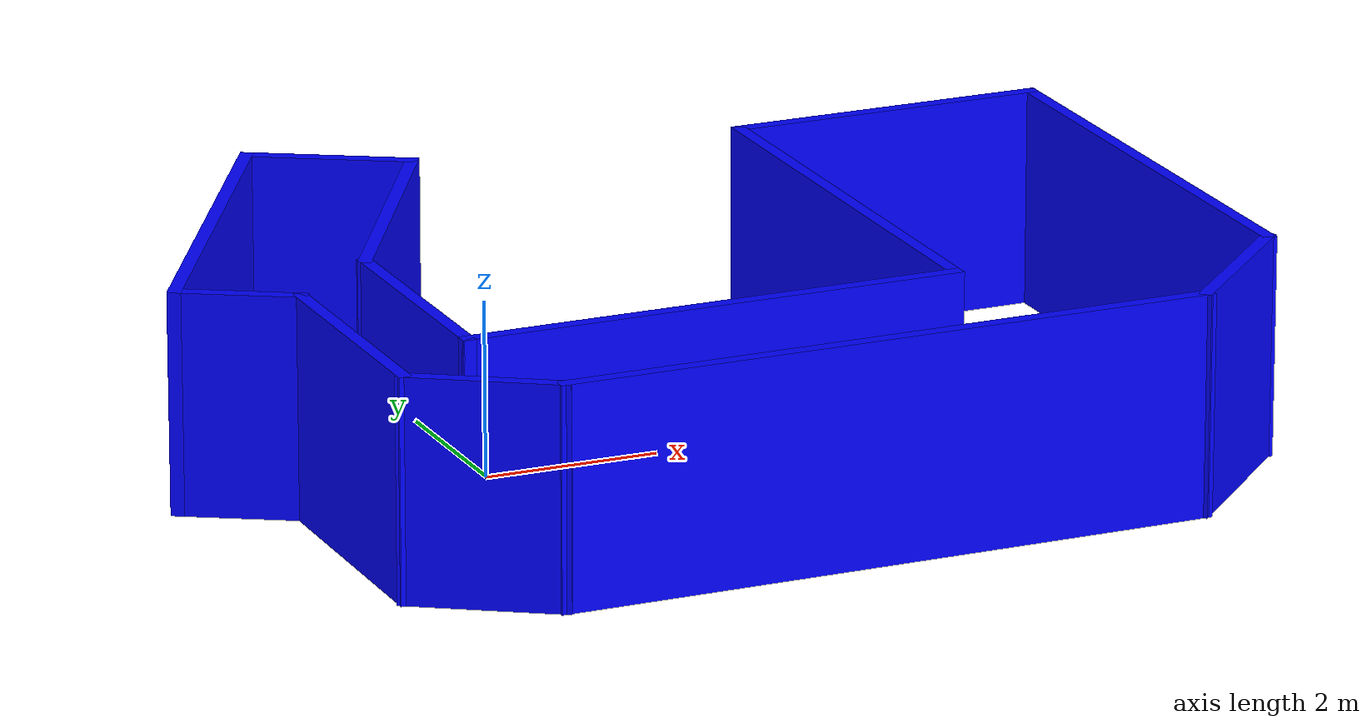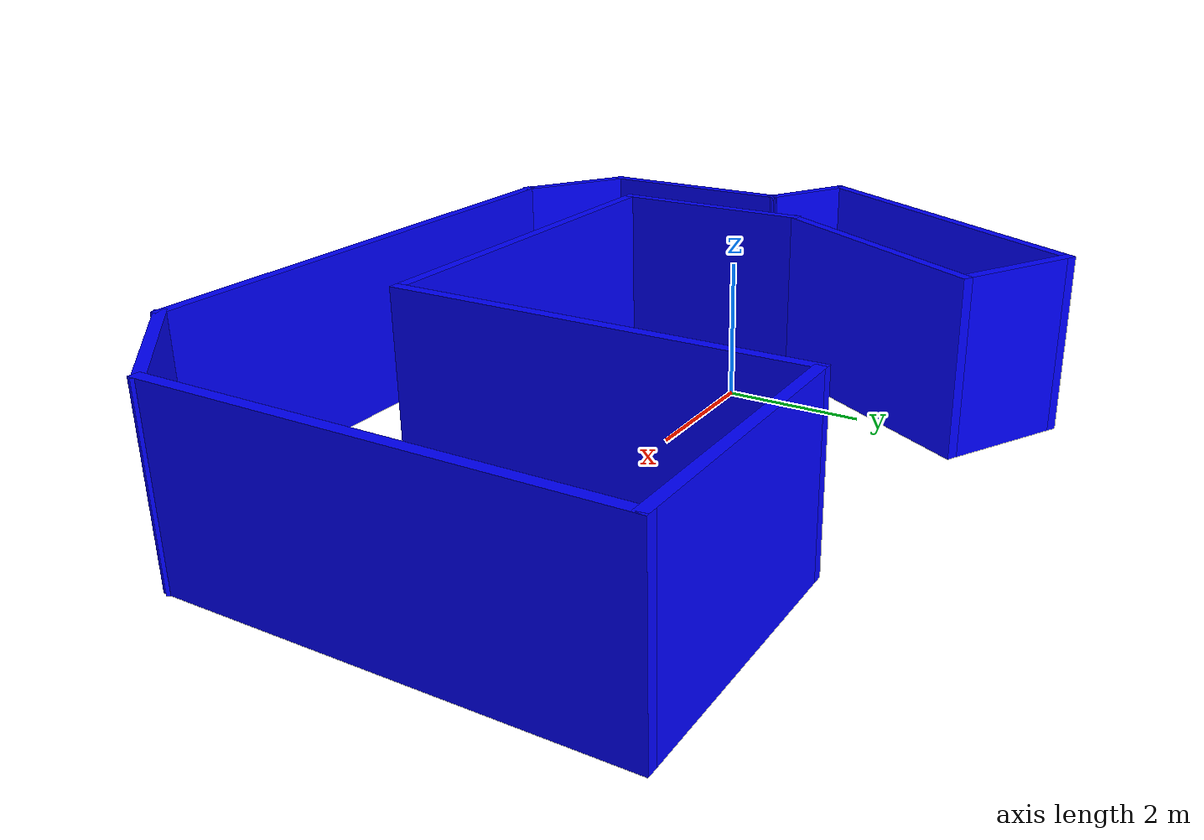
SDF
<?xml version='1.0'?>
<sdf version='1.6'>
  <model name='initial_design'>
    <pose frame=''>2.27625 0.119608 0 0 -0 0</pose>
    <link name='Wall_0'>
      <collision name='Wall_0_Collision'>
        <geometry>
          <box>
            <size>3 0.15 2.5</size>
          </box>
        </geometry>
        <pose frame=''>0 0 1.25 0 -0 0</pose>
      </collision>
      <visual name='Wall_0_Visual'>
        <pose frame=''>0 0 1.25 0 -0 0</pose>
        <geometry>
          <box>
            <size>3 0.15 2.5</size>
          </box>
        </geometry>
        <material>
          <script>
            <uri>file://media/materials/scripts/gazebo.material</uri>
            <name>Gazebo/Grey</name>
          </script>
          <ambient>0 0 1 1</ambient>
        </material>
        <meta>
          <layer>0</layer>
        </meta>
      </visual>
      <pose frame=''>-4.54625 -1.98461 0 0 -0 1.5708</pose>
    </link>
    <link name='Wall_1'>
      <collision name='Wall_1_Collision'>
        <geometry>
          <box>
            <size>1.5 0.15 2.5</size>
          </box>
        </geometry>
        <pose frame=''>0 0 1.25 0 -0 0</pose>
      </collision>
      <visual name='Wall_1_Visual'>
        <pose frame=''>0 0 1.25 0 -0 0</pose>
        <geometry>
          <box>
            <size>1.5 0.15 2.5</size>
          </box>
        </geometry>
        <material>
          <script>
            <uri>file://media/materials/scripts/gazebo.material</uri>
            <name>Gazebo/Grey</name>
          </script>
          <ambient>0 0 1 1</ambient>
        </material>
        <meta>
          <layer>0</layer>
        </meta>
      </visual>
      <pose frame=''>-5.13081 -0.222108 0 0 -0 2.61799</pose>
    </link>
    <link name='Wall_10'>
      <collision name='Wall_10_Collision'>
        <geometry>
          <box>
            <size>2.25 0.15 2.5</size>
          </box>
        </geometry>
        <pose frame=''>0 0 1.25 0 -0 0</pose>
      </collision>
      <visual name='Wall_10_Visual'>
        <pose frame=''>0 0 1.25 0 -0 0</pose>
        <geometry>
          <box>
            <size>2.25 0.15 2.5</size>
          </box>
        </geometry>
        <material>
          <script>
            <uri>file://media/materials/scripts/gazebo.material</uri>
            <name>Gazebo/Grey</name>
          </script>
          <ambient>0 0 1 1</ambient>
        </material>
        <meta>
          <layer>0</layer>
        </meta>
      </visual>
      <pose frame=''>4.9693 -3.56954 0 0 0 -2.35619</pose>
    </link>
    <link name='Wall_11'>
      <collision name='Wall_11_Collision'>
        <geometry>
          <box>
            <size>7.5 0.15 2.5</size>
          </box>
        </geometry>
        <pose frame=''>0 0 1.25 0 -0 0</pose>
      </collision>
      <visual name='Wall_11_Visual'>
        <pose frame=''>0 0 1.25 0 -0 0</pose>
        <geometry>
          <box>
            <size>7.5 0.15 2.5</size>
          </box>
        </geometry>
        <material>
          <script>
            <uri>file://media/materials/scripts/gazebo.material</uri>
            <name>Gazebo/Grey</name>
          </script>
          <ambient>0 0 1 1</ambient>
        </material>
        <meta>
          <layer>0</layer>
        </meta>
      </visual>
      <pose frame=''>0.551842 -4.312 0 0 -0 3.14159</pose>
    </link>
    <link name='Wall_12'>
      <collision name='Wall_12_Collision'>
        <geometry>
          <box>
            <size>1.83508 0.15 2.5</size>
          </box>
        </geometry>
        <pose frame=''>0 0 1.25 0 -0 0</pose>
      </collision>
      <visual name='Wall_12_Visual'>
        <pose frame=''>0 0 1.25 0 -0 0</pose>
        <geometry>
          <box>
            <size>1.83508 0.15 2.5</size>
          </box>
        </geometry>
        <material>
          <script>
            <uri>file://media/materials/scripts/gazebo.material</uri>
            <name>Gazebo/Grey</name>
          </script>
          <ambient>0 0 1 1</ambient>
        </material>
        <meta>
          <layer>0</layer>
        </meta>
      </visual>
      <pose frame=''>-3.8347 -3.8608 0 0 -0 2.57647</pose>
    </link>
    <link name='Wall_2'>
      <collision name='Wall_2_Collision'>
        <geometry>
          <box>
            <size>5 0.15 2.5</size>
          </box>
        </geometry>
        <pose frame=''>0 0 1.25 0 -0 0</pose>
      </collision>
      <visual name='Wall_2_Visual'>
        <pose frame=''>0 0 1.25 0 -0 0</pose>
        <geometry>
          <box>
            <size>5 0.15 2.5</size>
          </box>
        </geometry>
        <material>
          <script>
            <uri>file://media/materials/scripts/gazebo.material</uri>
            <name>Gazebo/Grey</name>
          </script>
          <ambient>0 0 1 1</ambient>
        </material>
        <meta>
          <layer>0</layer>
        </meta>
      </visual>
      <pose frame=''>-4.50288 2.2155 0 0 -0 1.0472</pose>
    </link>
    <link name='Wall_3'>
      <collision name='Wall_3_Collision'>
        <geometry>
          <box>
            <size>2 0.15 2.5</size>
          </box>
        </geometry>
        <pose frame=''>0 0 1.25 0 -0 0</pose>
      </collision>
      <visual name='Wall_3_Visual'>
        <pose frame=''>0 0 1.25 0 -0 0</pose>
        <geometry>
          <box>
            <size>2 0.15 2.5</size>
          </box>
        </geometry>
        <material>
          <script>
            <uri>file://media/materials/scripts/gazebo.material</uri>
            <name>Gazebo/Grey</name>
          </script>
          <ambient>0 0 1 1</ambient>
        </material>
        <meta>
          <layer>0</layer>
        </meta>
      </visual>
      <pose frame=''>-2.48931 3.85311 0 0 0 -0.523599</pose>
    </link>
    <link name='Wall_4'>
      <collision name='Wall_4_Collision'>
        <geometry>
          <box>
            <size>3.75 0.15 2.5</size>
          </box>
        </geometry>
        <pose frame=''>0 0 1.25 0 -0 0</pose>
      </collision>
      <visual name='Wall_4_Visual'>
        <pose frame=''>0 0 1.25 0 -0 0</pose>
        <geometry>
          <box>
            <size>3.75 0.15 2.5</size>
          </box>
        </geometry>
        <material>
          <script>
            <uri>file://media/materials/scripts/gazebo.material</uri>
            <name>Gazebo/Grey</name>
          </script>
          <ambient>0 0 1 1</ambient>
        </material>
        <meta>
          <layer>0</layer>
        </meta>
      </visual>
      <pose frame=''>-2.58823 1.83177 0 0 0 -2.0944</pose>
    </link>
    <link name='Wall_5'>
      <collision name='Wall_5_Collision'>
        <geometry>
          <box>
            <size>3 0.15 2.5</size>
          </box>
        </geometry>
        <pose frame=''>0 0 1.25 0 -0 0</pose>
      </collision>
      <visual name='Wall_5_Visual'>
        <pose frame=''>0 0 1.25 0 -0 0</pose>
        <geometry>
          <box>
            <size>3 0.15 2.5</size>
          </box>
        </geometry>
        <material>
          <script>
            <uri>file://media/materials/scripts/gazebo.material</uri>
            <name>Gazebo/Grey</name>
          </script>
          <ambient>0 0 1 1</ambient>
        </material>
        <meta>
          <layer>0</layer>
        </meta>
      </visual>
      <pose frame=''>-3.48823 -1.15208 0 0 0 -1.5708</pose>
    </link>
    <link name='Wall_6'>
      <collision name='Wall_6_Collision'>
        <geometry>
          <box>
            <size>5.75 0.15 2.5</size>
          </box>
        </geometry>
        <pose frame=''>0 0 1.25 0 -0 0</pose>
      </collision>
      <visual name='Wall_6_Visual'>
        <pose frame=''>0 0 1.25 0 -0 0</pose>
        <geometry>
          <box>
            <size>5.75 0.15 2.5</size>
          </box>
        </geometry>
        <material>
          <script>
            <uri>file://media/materials/scripts/gazebo.material</uri>
            <name>Gazebo/Grey</name>
          </script>
          <ambient>0 0 1 1</ambient>
        </material>
        <meta>
          <layer>0</layer>
        </meta>
      </visual>
      <pose frame=''>-0.688234 -2.57708 0 0 -0 0</pose>
    </link>
    <link name='Wall_7'>
      <collision name='Wall_7_Collision'>
        <geometry>
          <box>
            <size>5.75 0.15 2.5</size>
          </box>
        </geometry>
        <pose frame=''>0 0 1.25 0 -0 0</pose>
      </collision>
      <visual name='Wall_7_Visual'>
        <pose frame=''>0 0 1.25 0 -0 0</pose>
        <geometry>
          <box>
            <size>5.75 0.15 2.5</size>
          </box>
        </geometry>
        <material>
          <script>
            <uri>file://media/materials/scripts/gazebo.material</uri>
            <name>Gazebo/Grey</name>
          </script>
          <ambient>0 0 1 1</ambient>
        </material>
        <meta>
          <layer>0</layer>
        </meta>
      </visual>
      <pose frame=''>2.11177 0.222924 0 0 -0 1.5708</pose>
    </link>
    <link name='Wall_8'>
      <collision name='Wall_8_Collision'>
        <geometry>
          <box>
            <size>3.75 0.15 2.5</size>
          </box>
        </geometry>
        <pose frame=''>0 0 1.25 0 -0 0</pose>
      </collision>
      <visual name='Wall_8_Visual'>
        <pose frame=''>0 0 1.25 0 -0 0</pose>
        <geometry>
          <box>
            <size>3.75 0.15 2.5</size>
          </box>
        </geometry>
        <material>
          <script>
            <uri>file://media/materials/scripts/gazebo.material</uri>
            <name>Gazebo/Grey</name>
          </script>
          <ambient>0 0 1 1</ambient>
        </material>
        <meta>
          <layer>0</layer>
        </meta>
      </visual>
      <pose frame=''>3.91177 3.02292 0 0 -0 0</pose>
    </link>
    <link name='Wall_9'>
      <collision name='Wall_9_Collision'>
        <geometry>
          <box>
            <size>6 0.15 2.5</size>
          </box>
        </geometry>
        <pose frame=''>0 0 1.25 0 -0 0</pose>
      </collision>
      <visual name='Wall_9_Visual'>
        <pose frame=''>0 0 1.25 0 -0 0</pose>
        <geometry>
          <box>
            <size>6 0.15 2.5</size>
          </box>
        </geometry>
        <material>
          <script>
            <uri>file://media/materials/scripts/gazebo.material</uri>
            <name>Gazebo/Grey</name>
          </script>
          <ambient>0 0 1 1</ambient>
        </material>
        <meta>
          <layer>0</layer>
        </meta>
      </visual>
      <pose frame=''>5.71177 0.097924 0 0 0 -1.5708</pose>
    </link>
    <static>1</static>
  </model>
</sdf>
